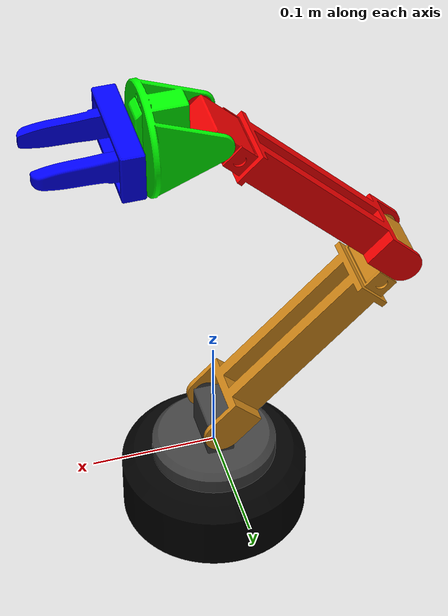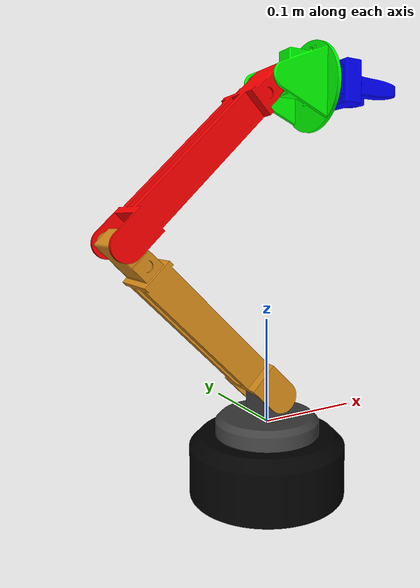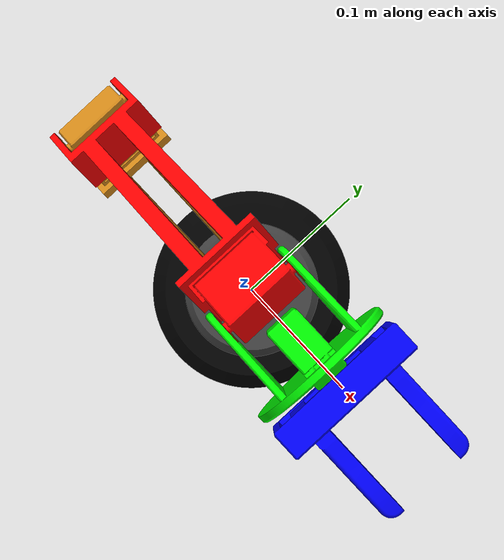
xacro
<?xml version='1.0' encoding='utf-8'?>
<robot name="robotic-arm" xmlns:xacro="http://www.ros.org/wiki/xacro">

  <!-- Include materials -->
  <xacro:include filename="$(find robotic-arm_description)/urdf/materials.xacro"/>

  <!-- Include gazebo -->

    <link name="base_footprint"/>

    <link name="base_link">
        <inertial>
            <origin xyz="0.0019350882837125133 -7.56053614966041e-18 -0.038471998484193894" rpy="0.0 0.0 0.0" />
            <mass value="1.2751270079207355" />
            <inertia ixx="0.0017613284780996711" iyy="0.001805084256313058" izz="0.00293673143960502" ixy="-1.5497898273746184e-18" iyz="-1.1716081790541872e-18" ixz="-6.572193393048108e-06" />
        </inertial>
        <visual name="base_link_visual">
            <origin xyz="0.0 0.0 0.0" rpy="0.0 0.0 0.0" />
            <geometry>
                <mesh filename="package://robotic-arm_description/meshes/base_link.stl" scale="0.001 0.001 0.001" />
            </geometry>
            <material name="Base_link"/>
        </visual>
        <collision name="base_link_collision">
            <origin xyz="0.0 0.0 0.0" rpy="0.0 0.0 0.0" />
            <geometry>
                <mesh filename="package://robotic-arm_description/meshes/base_link.stl" scale="0.001 0.001 0.001" />
            </geometry>
        </collision>
    </link>
    <link name="base">
        <inertial>
            <origin xyz="-2.412577731329081e-14 -2.527847581023765e-18 0.023788025443157838" rpy="0.0 -0.0 0.0" />
            <mass value="0.44973770798148155" />
            <inertia ixx="0.00023083608238558574" iyy="0.00018973558521466914" izz="0.00023807605683574535" ixy="-2.1555024432015656e-19" iyz="-2.7725974909069286e-20" ixz="1.867266350592463e-16" />
        </inertial>
        <visual name="base_visual">
            <origin xyz="0.0 0.0 0.01" rpy="0.0 -0.0 0.0" />
            <geometry>
                <mesh filename="package://robotic-arm_description/meshes/base.stl" scale="0.001 0.001 0.001" />
            </geometry>
            <material name="Base"/>
        </visual>
        <collision name="base_collision">
            <origin xyz="0.0 0.0 0.01" rpy="0.0 -0.0 0.0" />
            <geometry>
                <mesh filename="package://robotic-arm_description/meshes/base.stl" scale="0.001 0.001 0.001" />
            </geometry>
        </collision>
    </link>
    <link name="arm_link">
        <inertial>
            <origin xyz="-0.1155607287042174 -0.11556072870424983 4.699571336434638e-18" rpy="0.0 -0.0 0.0" />
            <mass value="0.4058712905468499" />
            <inertia ixx="0.0006924109730527574" iyy="0.0006924109730514468" izz="0.0012336786613033925" ixy="-0.0005986893722248077" iyz="-2.426979280947317e-18" ixz="1.5088365465326855e-18" />
        </inertial>
        <visual name="arm_link_visual">
            <origin xyz="0.021920310543421046 0.021920310543421053 -1.1102230246251566e-18" rpy="1.5707963267948966 2.7755575615628907e-17 -0.7853981633974483" />
            <geometry>
                <mesh filename="package://robotic-arm_description/meshes/arm_link.stl" scale="0.001 0.001 0.001" />
            </geometry>
            <material name="arm"/>
        </visual>
        <collision name="arm_link_collision">
            <origin xyz="0.021920310543421046 0.021920310543421053 -1.1102230246251566e-18" rpy="1.5707963267948966 2.7755575615628907e-17 -0.7853981633974483" />
            <geometry>
                <mesh filename="package://robotic-arm_description/meshes/arm_link.stl" scale="0.001 0.001 0.001" />
            </geometry>
        </collision>
    </link>
    <link name="forearm_link">
        <inertial>
            <origin xyz="0.11933484640300154 -0.11933484994944876 -3.7213986549953376e-18" rpy="-2.7369110631344083e-48 3.0385816786431356e-64 0.0" />
            <mass value="0.398627452252384" />
            <inertia ixx="0.0006820144224255595" iyy="0.0006820144224268941" izz="0.0012165071520571472" ixy="0.0005919414805905257" iyz="-2.832362186398165e-20" ixz="-1.161890082201946e-19" />
        </inertial>
        <visual name="forearm_link_visual">
            <origin xyz="-0.16581654376326369 0.16581654021678285 7.549516567451074e-17" rpy="1.570796326794897 -1.110223024625157e-16 0.7853981633974477" />
            <geometry>
                <mesh filename="package://robotic-arm_description/meshes/forearm_link.stl" scale="0.001 0.001 0.001" />
            </geometry>
            <material name="forearm"/>
        </visual>
        <collision name="forearm_link_collision">
            <origin xyz="-0.16581654376326369 0.16581654021678285 7.549516567451074e-17" rpy="1.570796326794897 -1.110223024625157e-16 0.7853981633974477" />
            <geometry>
                <mesh filename="package://robotic-arm_description/meshes/forearm_link.stl" scale="0.001 0.001 0.001" />
            </geometry>
        </collision>
    </link>
    <link name="wrist_link">
        <inertial>
            <origin xyz="0.03558762872383781 -0.008396382172655877 -4.677373772692103e-06" rpy="0.0 -0.0 0.0" />
            <mass value="0.30675157970415107" />
            <inertia ixx="9.338128096254839e-05" iyy="7.776523033221921e-05" izz="0.00010254991655347934" ixy="-2.4075136102379505e-06" iyz="1.223708010768378e-08" ixz="1.4168188876894576e-08" />
        </inertial>
        <visual name="wrist_link_visual">
            <origin xyz="-0.442500003834537 -2.2600423932317426e-09 4.440892098500637e-18" rpy="1.5707963267948968 -2.747661802696606e-16 1.5707963267948966" />
            <geometry>
                <mesh filename="package://robotic-arm_description/meshes/wrist_link.stl" scale="0.001 0.001 0.001" />
            </geometry>
            <material name="wrist"/>
        </visual>
        <collision name="wrist_link_collision">
            <origin xyz="-0.442500003834537 -2.2600423932317426e-09 4.440892098500637e-18" rpy="1.5707963267948968 -2.747661802696606e-16 1.5707963267948966" />
            <geometry>
                <mesh filename="package://robotic-arm_description/meshes/wrist_link.stl" scale="0.001 0.001 0.001" />
            </geometry>
        </collision>
    </link>
    <link name="gripper_link">
        <inertial>
            <origin xyz="0.0041223026656079485 -4.9882493000711394e-17 2.2600379168125073e-09" rpy="0.0 -0.0 0.0" />
            <mass value="0.032286945472705525" />
            <inertia ixx="2.4506894963453266e-05" iyy="6.4339200135685e-06" izz="1.971550006383963e-05" ixy="-2.3882520087669606e-20" iyz="-1.552582880198466e-20" ixz="-7.589415207398531e-19" />
        </inertial>
        <visual name="gripper_link_visual">
            <origin xyz="-0.5014000038345371 4.440892098500626e-18 2.2600423932317426e-09" rpy="1.177569344012831e-16 1.5707963267948963 0" />
            <geometry>
                <mesh filename="package://robotic-arm_description/meshes/gripper_link.stl" scale="0.001 0.001 0.001" />
            </geometry>
            <material name="gripper"/>
        </visual>
        <collision name="gripper_link_collision">
            <origin xyz="-0.5014000038345371 4.440892098500626e-18 2.2600423932317426e-09" rpy="1.177569344012831e-16 1.5707963267948963 0" />
            <geometry>
                <mesh filename="package://robotic-arm_description/meshes/gripper_link.stl" scale="0.001 0.001 0.001" />
            </geometry>
        </collision>
    </link>
    <link name="finger_l">
        <inertial>
            <origin xyz="0.028848103581100182 0.022913349293162213 0.008735724525305423" rpy="0.0 -0.0 0.0" />
            <mass value="0.01578028501010725" />
            <inertia ixx="1.6319669672267608e-06" iyy="8.481847736222653e-06" izz="8.878684134625665e-06" ixy="-8.875979579263719e-07" iyz="-3.5551716122507796e-07" ixz="-5.743822306467495e-07" />
        </inertial>
        <visual name="finger_l_visual">
            <origin xyz="-0.5024000038345371 -0.007499999999999995 0.010000002260042358" rpy="1.177569344012831e-16 1.5707963267948963 0" />
            <geometry>
                <mesh filename="package://robotic-arm_description/meshes/finger_l.stl" scale="0.001 0.001 0.001" />
            </geometry>
            <material name="gripper"/>
        </visual>
        <collision name="finger_l_collision">
            <origin xyz="-0.5024000038345371 -0.007499999999999995 0.010000002260042358" rpy="1.177569344012831e-16 1.5707963267948963 0" />
            <geometry>
                <mesh filename="package://robotic-arm_description/meshes/finger_l.stl" scale="0.001 0.001 0.001" />
            </geometry>
        </collision>
    </link>
    <link name="finger_r">
        <inertial>
            <origin xyz="0.02884801104673416 -0.022913419650612443 -0.008735731076936589" rpy="0.0 -0.0 0.0" />
            <mass value="0.015780485954483076" />
            <inertia ixx="1.631986601722396e-06" iyy="8.481870175917937e-06" izz="8.878699209223376e-06" ixy="8.875900838909164e-07" iyz="-3.5551816132200164e-07" ixz="5.743819837909368e-07" />
        </inertial>
        <visual name="finger_r_visual">
            <origin xyz="-0.5024000038345371 0.007500000000000005 -0.009999997739957607" rpy="1.177569344012831e-16 1.5707963267948963 0" />
            <geometry>
                <mesh filename="package://robotic-arm_description/meshes/finger_r.stl" scale="0.001 0.001 0.001" />
            </geometry>
            <material name="gripper"/>
        </visual>
        <collision name="finger_r_collision">
            <origin xyz="-0.5024000038345371 0.007500000000000005 -0.009999997739957607" rpy="1.177569344012831e-16 1.5707963267948963 0" />
            <geometry>
                <mesh filename="package://robotic-arm_description/meshes/finger_r.stl" scale="0.001 0.001 0.001" />
            </geometry>
        </collision>
    </link>

    <joint name="base_joint" type="fixed">
        <origin xyz="0.0 0.0 0.0" rpy="0.0 -0.0 0.0" />
        <parent link="base_footprint" />
        <child link="base_link" />
        <axis xyz="0.0 0.0 1.0" />
    </joint>

    <joint name="base_rotation" type="continuous">
        <origin xyz="0.0 0.0 -0.01" rpy="0.0 -0.0 0.0" />
        <parent link="base_link" />
        <child link="base" />
        <axis xyz="0.0 0.0 1.0" />
    </joint>
    <joint name="arm_rotation" type="continuous">
        <origin xyz="0.0 0.0 0.040999999999999995" rpy="-1.5707963267948966 -0.0 0.0" />
        <parent link="base" />
        <child link="arm_link" />
        <axis xyz="0.0 0.0 1.0" />
    </joint>
    <joint name="forearm_rotation" type="continuous">
        <origin xyz="-0.14389623 -0.14389623 0.0" rpy="1.3866695599588117e-32 -2.5658541216885115e-48 0.0" />
        <parent link="arm_link" />
        <child link="forearm_link" />
        <axis xyz="2.5658541216885078e-48 1.3866695599588098e-32 0.9999999999999987" />
    </joint>
    <joint name="wrist_rotation" type="continuous">
        <origin xyz="0.14707821000000024 -0.14707820999999996 2.0394887674022966e-33" rpy="-1.38666955995881e-32 -2.4651903288156613e-32 -1.1344072614353854e-48" />
        <parent link="forearm_link" />
        <child link="wrist_link" />
        <axis xyz="2.465190328815662e-32 0.0 1.0" />
    </joint>
    <joint name="wrist_link_gripper_joint" type="fixed">
        <origin xyz="0.05890000000000001 0.0 -1.451997103672425e-33" rpy="1.5707963267948966 2.465190328815662e-32 0.0" />
        <parent link="wrist_link" />
        <child link="gripper_link" />
    </joint>
    <joint name="finger_r_joint" type="prismatic">
        <origin xyz="0.0002499999999999947 0.0 0.01" rpy="0.0 -0.0 0.0" />
        <parent link="gripper_link" />
        <child link="finger_r" />
        <axis xyz="0.0 1.0 0.0" />
        <limit lower="0" upper="0" effort="50" velocity="1"/>
    </joint>
    <joint name="finger_l_joint" type="prismatic">
        <origin xyz="0.0002499999999999947 0.0 -0.009999999999999966" rpy="0.0 -0.0 0.0" />
        <parent link="gripper_link" />
        <child link="finger_l" />
        <axis xyz="-0.0 -1.0 -0.0" />
        <limit lower="0" upper="0" effort="50" velocity="1"/>
    </joint>
</robot>

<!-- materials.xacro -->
<robot xmlns:xacro="http://www.ros.org/wiki/xacro">

    <!-- ================= COLORS ================= -->

    <material name="Base_link">
        <color rgba="0 0 0 1"/>
    </material>

    <material name="Base">
        <color rgba="0.25 0.25 0.25 1"/>
    </material>

    <material name="arm">
        <color rgba="0.85 0.55 0.1 1"/>
    </material>

    <material name="forearm">
        <color rgba="1 0 0 1"/>
    </material>

    <material name="wrist">
        <color rgba="0 1 0 1"/>
    </material>

    <material name="gripper">
        <color rgba="0 0 1 1"/>
    </material>
</robot>
